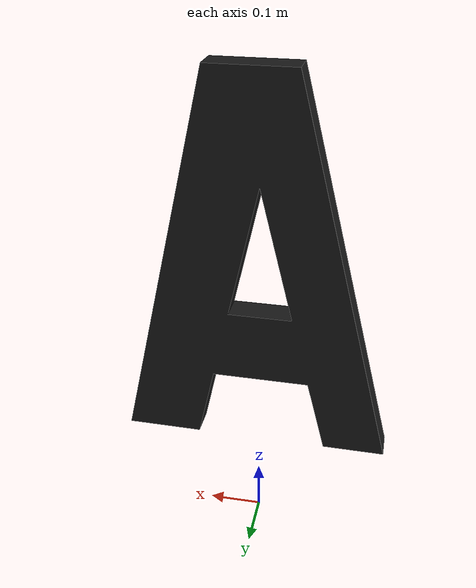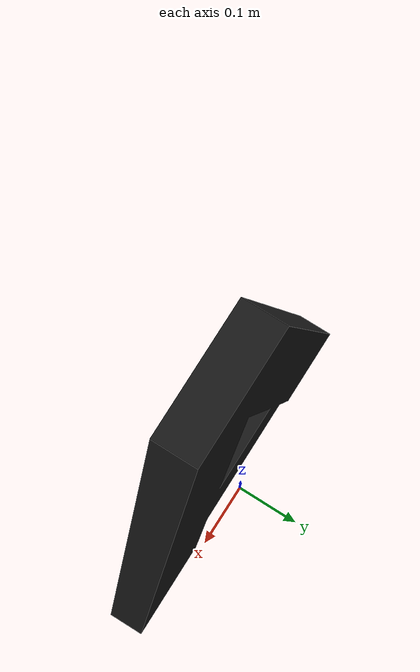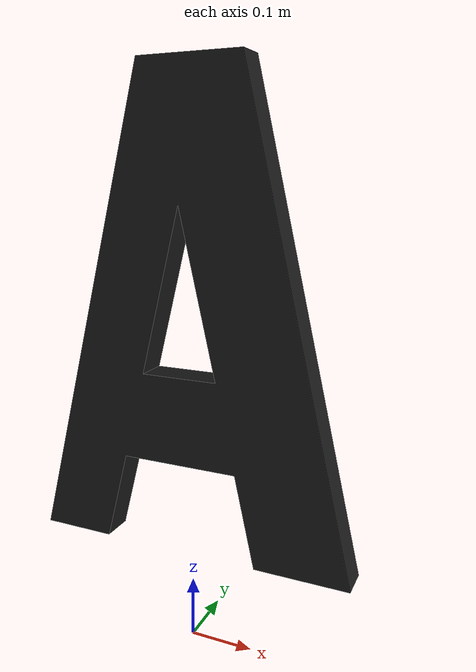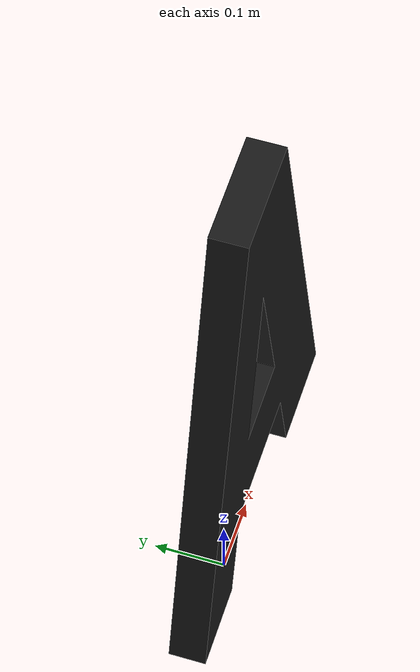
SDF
<?xml version="1.0"?>
<sdf version="1.9">
  <model name="Letter A">
    <static>true</static>
    <link name="link">
      <collision name="collision">
        <geometry>
          <mesh>
            <scale>1 1 1</scale>
            <uri>model://Circuito/Letter A/meshes/letter_A.stl</uri>
          </mesh>
        </geometry>
      </collision>
      <visual name="letter">
        <geometry>
          <mesh>
            <scale>1 1 1</scale>
            <uri>model://Circuito/Letter A/meshes/letter_A.stl</uri>
          </mesh>
        </geometry>
        <material>
          <ambient>0.1 0.1 0.1 1</ambient>
          <diffuse>0.1 0.1 0.1 1</diffuse>
          <specular>1.0 1.0 1.0 1</specular>
        </material>
      </visual>
    </link>
  </model>
</sdf>
